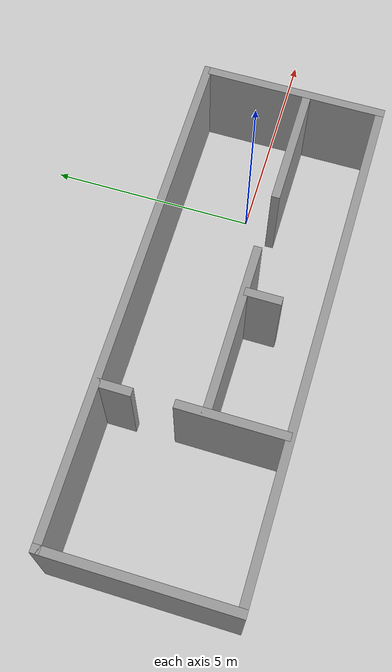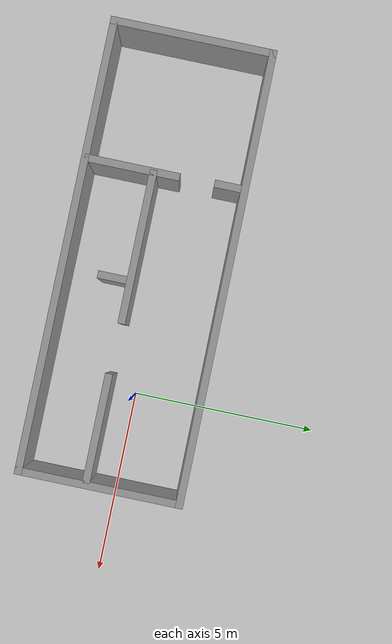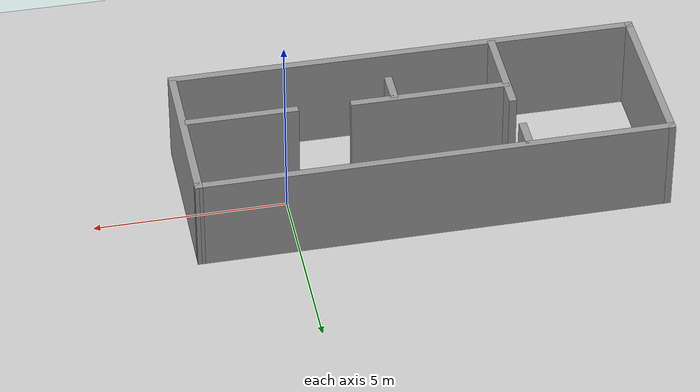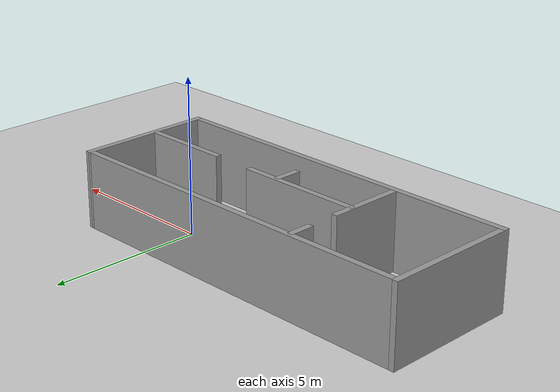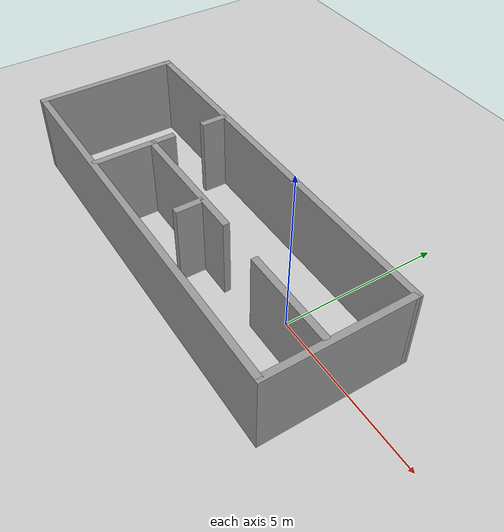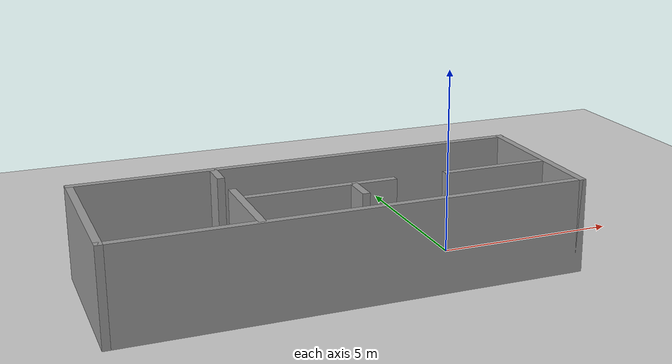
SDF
<sdf version="1.4">
 <world name="default">
  <light name="sun" type="directional">
   <pose>0 0 10 0 -0 0</pose>
   <diffuse>0.8 0.8 0.8 1</diffuse>
   <specular>0.2 0.2 0.2 1</specular>
   <attenuation>
    <range>1000</range>
    <constant>0.9</constant>
    <linear>0.01</linear>
    <quadratic>0.001</quadratic>
   </attenuation>
   <direction>-0.5 0.1 -0.9</direction>
  </light>
  <model name="ground_plane">
   <static>1</static>
   <link name="link">
    <collision name="collision">
     <geometry><plane><normal>0 0 1</normal><size>100 100</size></plane></geometry>
     <surface><friction><ode><mu>100</mu><mu2>50</mu2></ode></friction></surface>
    </collision>
    <visual name="visual">
     <cast_shadows>0</cast_shadows>
     <geometry><plane><normal>0 0 1</normal><size>100 100</size></plane></geometry>
     <material>
      <script><uri>file://media/materials/scripts/gazebo.material</uri><name>Gazebo/Grey</name></script>
     </material>
    </visual>
    <velocity_decay><linear>0</linear><angular>0</angular></velocity_decay>
   </link>
  </model>
  <physics type="ode">
   <max_step_size>0.01</max_step_size>
   <real_time_factor>1</real_time_factor>
   <real_time_update_rate>100</real_time_update_rate>
   <gravity>0 0 -9.8</gravity>
  </physics>
  <scene><ambient>0.4 0.4 0.4 1</ambient><background>0.7 0.7 0.7 1</background><shadows>1</shadows></scene>
  <spherical_coordinates>
   <surface_model>EARTH_WGS84</surface_model>
   <latitude_deg>0</latitude_deg>
   <longitude_deg>0</longitude_deg>
   <elevation>0</elevation>
   <heading_deg>0</heading_deg>
  </spherical_coordinates>
  <model name="model">
   <link name="Wall_13">
    <collision name="Wall_13_Collision">
     <geometry><box><size>4.12631 0.2 2.5</size></box></geometry>
     <pose>0 0 1.25 0 -0 0</pose>
    </collision>
    <visual name="Wall_13_Visual">
     <pose>0 0 1.25 0 -0 0</pose>
     <geometry><box><size>4.12631 0.2 2.5</size></box></geometry>
     <material>
      <script><uri>file://media/materials/scripts/gazebo.material</uri><name>Gazebo/Grey</name></script>
     </material>
    </visual>
    <velocity_decay><linear>0</linear><angular>0</angular></velocity_decay>
    <pose>-5.13413 -4.5031 0 0 -0 0</pose>
   </link>
   <link name="Wall_15">
    <collision name="Wall_15_Collision">
     <geometry><box><size>2.915 0.2 2.5</size></box></geometry>
     <pose>0 0 1.25 0 -0 0</pose>
    </collision>
    <visual name="Wall_15_Visual">
     <pose>0 0 1.25 0 -0 0</pose>
     <geometry><box><size>2.915 0.2 2.5</size></box></geometry>
     <material>
      <script><uri>file://media/materials/scripts/gazebo.material</uri><name>Gazebo/Grey</name></script>
     </material>
    </visual>
    <velocity_decay><linear>0</linear><angular>0</angular></velocity_decay>
    <pose>-0.268009 -4.54487 0 0 -0 0</pose>
   </link>
   <link name="Wall_17">
    <collision name="Wall_17_Collision">
     <geometry><box><size>0.868309 0.2 2.5</size></box></geometry>
     <pose>0 0 1.25 0 -0 0</pose>
    </collision>
    <visual name="Wall_17_Visual">
     <pose>0 0 1.25 0 -0 0</pose>
     <geometry><box><size>0.868309 0.2 2.5</size></box></geometry>
     <material>
      <script><uri>file://media/materials/scripts/gazebo.material</uri><name>Gazebo/Grey</name></script>
     </material>
    </visual>
    <velocity_decay><linear>0</linear><angular>0</angular></velocity_decay>
    <pose>-4.21521 -4.94168 0 0 0 -1.5708</pose>
   </link>
   <link name="Wall_2">
    <collision name="Wall_2_Collision">
     <geometry><box><size>4.47521 0.2 2.5</size></box></geometry>
     <pose>0 0 1.25 0 -0 0</pose>
    </collision>
    <visual name="Wall_2_Visual">
     <pose>0 0 1.25 0 -0 0</pose>
     <geometry><box><size>4.47521 0.2 2.5</size></box></geometry>
     <material>
      <script><uri>file://media/materials/scripts/gazebo.material</uri><name>Gazebo/Grey</name></script>
     </material>
    </visual>
    <velocity_decay><linear>0</linear><angular>0</angular></velocity_decay>
    <pose>-10.845 -4.2005 0 0 0 -1.5708</pose>
   </link>
   <link name="Wall_3">
    <collision name="Wall_3_Collision">
     <geometry><box><size>12.2865 0.2 2.5</size></box></geometry>
     <pose>0 0 1.25 0 -0 0</pose>
    </collision>
    <visual name="Wall_3_Visual">
     <pose>0 0 1.25 0 -0 0</pose>
     <geometry><box><size>12.2865 0.2 2.5</size></box></geometry>
     <material>
      <script><uri>file://media/materials/scripts/gazebo.material</uri><name>Gazebo/Grey</name></script>
     </material>
    </visual>
    <velocity_decay><linear>0</linear><angular>0</angular></velocity_decay>
    <pose>-4.80149 -6.33814 0 0 0 -2.2e-05</pose>
   </link>
   <link name="Wall_4">
    <collision name="Wall_4_Collision">
     <geometry><box><size>4.5042 0.2 2.5</size></box></geometry>
     <pose>0 0 1.25 0 -0 0</pose>
    </collision>
    <visual name="Wall_4_Visual">
     <pose>0 0 1.25 0 -0 0</pose>
     <geometry><box><size>4.5042 0.2 2.5</size></box></geometry>
     <material>
      <script><uri>file://media/materials/scripts/gazebo.material</uri><name>Gazebo/Grey</name></script>
     </material>
    </visual>
    <velocity_decay><linear>0</linear><angular>0</angular></velocity_decay>
    <pose>1.24201 -4.18617 0 0 -0 1.5708</pose>
   </link>
   <link name="Wall_5">
    <collision name="Wall_5_Collision">
     <geometry><box><size>12.2866 0.2 2.5</size></box></geometry>
     <pose>0 0 1.25 0 -0 0</pose>
    </collision>
    <visual name="Wall_5_Visual">
     <pose>0 0 1.25 0 -0 0</pose>
     <geometry><box><size>12.2866 0.2 2.5</size></box></geometry>
     <material>
      <script><uri>file://media/materials/scripts/gazebo.material</uri><name>Gazebo/Grey</name></script>
     </material>
    </visual>
    <velocity_decay><linear>0</linear><angular>0</angular></velocity_decay>
    <pose>-4.80125 -2.04857 0 0 0 -3.13919</pose>
   </link>
   <link name="Wall_7">
    <collision name="Wall_7_Collision">
     <geometry><box><size>0.80544 0.2 2.5</size></box></geometry>
     <pose>0 0 1.25 0 -0 0</pose>
    </collision>
    <visual name="Wall_7_Visual">
     <pose>0 0 1.25 0 -0 0</pose>
     <geometry><box><size>0.80544 0.2 2.5</size></box></geometry>
     <material>
      <script><uri>file://media/materials/scripts/gazebo.material</uri><name>Gazebo/Grey</name></script>
     </material>
    </visual>
    <velocity_decay><linear>0</linear><angular>0</angular></velocity_decay>
    <pose>-7.17798 -2.46723 0 0 0 -1.5708</pose>
   </link>
   <link name="Wall_9">
    <collision name="Wall_9_Collision">
     <geometry><box><size>2.55407 0.2 2.5</size></box></geometry>
     <pose>0 0 1.25 0 -0 0</pose>
    </collision>
    <visual name="Wall_9_Visual">
     <pose>0 0 1.25 0 -0 0</pose>
     <geometry><box><size>2.55407 0.2 2.5</size></box></geometry>
     <material>
      <script><uri>file://media/materials/scripts/gazebo.material</uri><name>Gazebo/Grey</name></script>
     </material>
    </visual>
    <velocity_decay><linear>0</linear><angular>0</angular></velocity_decay>
    <pose>-7.14899 -5.07428 0 0 0 -1.5708</pose>
   </link>
   <static>1</static>
   <pose>1.26045 3.81425 0 0 -0 0</pose>
  </model>
 </world>
</sdf>
